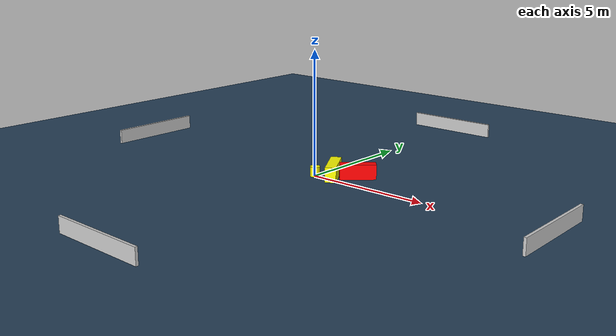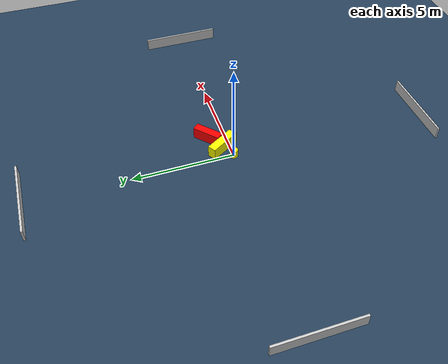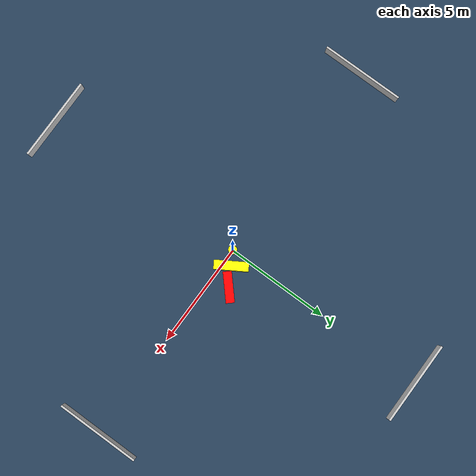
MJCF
<?xml version="1.0" ?>
<mujoco model="generated_environment">
  <option timestep="0.01" integrator="RK4" cone="elliptic"/>
  <default>
    <geom density="1"/>
  </default>
  <asset>
    <texture builtin="gradient" height="3072" name="skybox" rgb1="0.3 0.5 0.7" rgb2="0 0 0" type="skybox" width="512"/>
    <texture builtin="checker" height="300" name="groundplane" rgb1="0.2 0.3 0.4" rgb2="0.1 0.2 0.3" type="2d" width="300"/>
    <material name="groundplane" reflectance="0.2" texrepeat="5 5" texture="groundplane"/>
  </asset>
  <worldbody>
    <light dir="0 0 -1" directional="true" pos="0 0 1.5"/>
    <geom condim="3" friction="0.5 0.005 0.001" material="groundplane" name="floor" pos="0 0 0" size="0 0 0.05" type="plane"/>
    <body name="walls">
      <geom name="wall_1" condim="4" pos="-10.0 0.0 0.3" rgba="0.800000011920929 0.800000011920929 0.800000011920929 1.0" size="0.05 2.0 0.3" type="box"/>
      <geom name="wall_2" condim="4" pos="10.0 0.0 0.3" rgba="0.800000011920929 0.800000011920929 0.800000011920929 1.0" size="0.05 2.0 0.3" type="box"/>
      <geom name="wall_3" condim="4" pos="0.0 -10.0 0.3" rgba="0.800000011920929 0.800000011920929 0.800000011920929 1.0" size="2.0 0.05 0.3" type="box"/>
      <geom name="wall_4" condim="4" pos="0.0 10.0 0.3" rgba="0.800000011920929 0.800000011920929 0.800000011920929 1.0" size="2.0 0.05 0.3" type="box"/>
    </body>
    <body name="robot">
      <joint name="joint_x" type="slide" pos="0 0 0" axis="1 0 0"/>
      <joint name="joint_y" type="slide" pos="0 0 0" axis="0 1 0"/>
      <geom name="robot" type="cylinder" pos="0.0 0.0 0.2" size="0.2 0.2 0.0" mass="5.0" friction="1.0 0.005 0.0001" condim="4" rgba="1.0 1.0 0.0 1.0"/>
    </body>
    <body name="obstacle_1_movable">
      <geom name="obstacle_1_movable" condim="4" pos="0.6248624388540921 0.3789411710053332 0.3" euler="0 0 211.6323598554392" friction="0.0 0.005 0.001" rgba="1.0 1.0 0.0 1.0" size="0.21335398438897724 0.7886085433770074 0.3" type="box" mass="0.1"/>
      <joint type="free"/>
    </body>
    <body name="obstacle_2_static">
      <geom name="obstacle_2_static" condim="4" pos="1.4634941913325896 0.8574080982719361 0.3" euler="0 0 311.8824422160826" friction="0.0 0.005 0.001" rgba="1.0 0.0 0.0 1.0" size="0.20090792103068922 0.7097882014677928 0.3" type="box"/>
    </body>
  </worldbody>
  <actuator>
    <motor name="actuator_x" joint="joint_x" gear="1" ctrlrange="-1 1"/>
    <motor name="actuator_y" joint="joint_y" gear="1" ctrlrange="-1 1"/>
  </actuator>
</mujoco>
